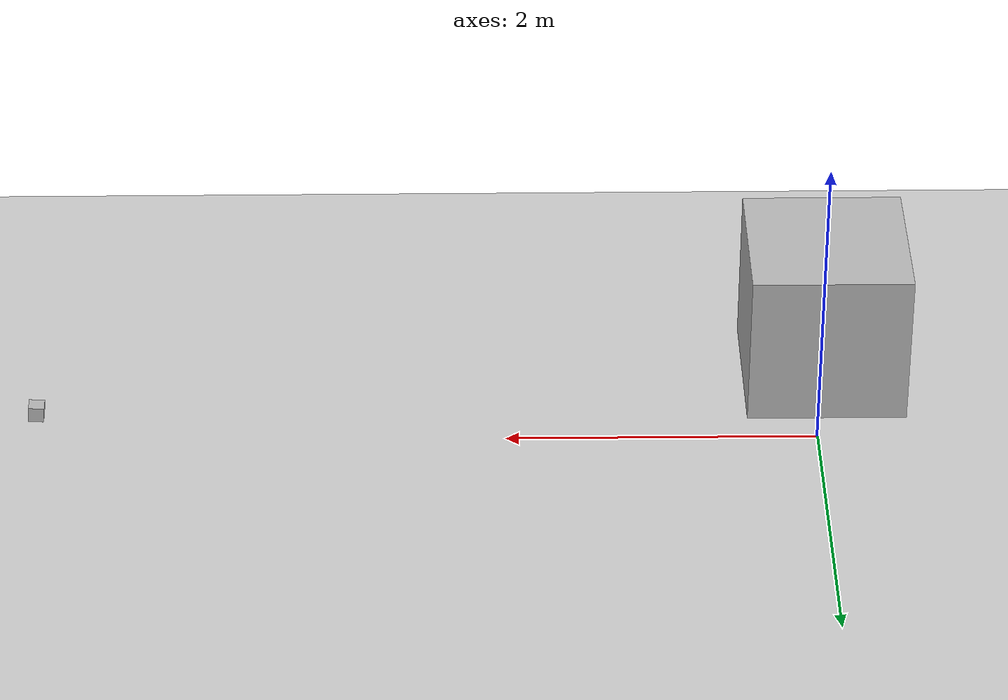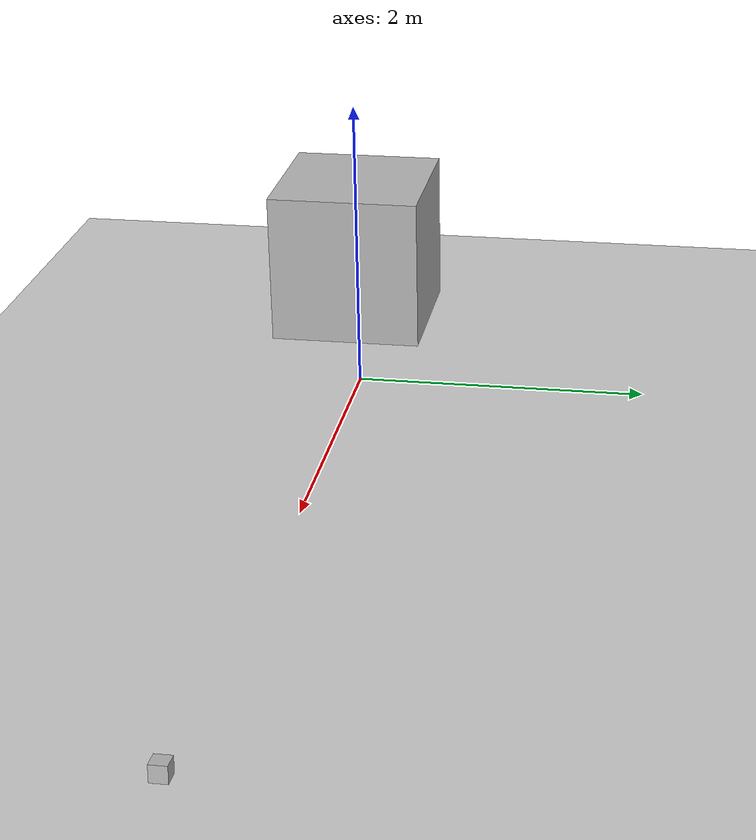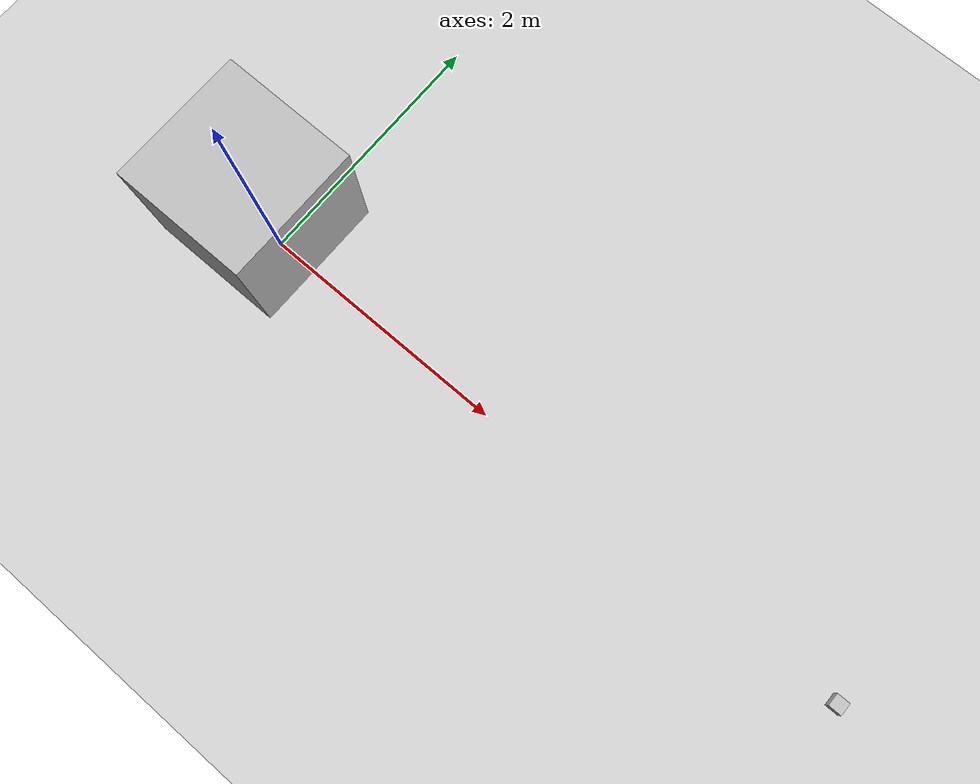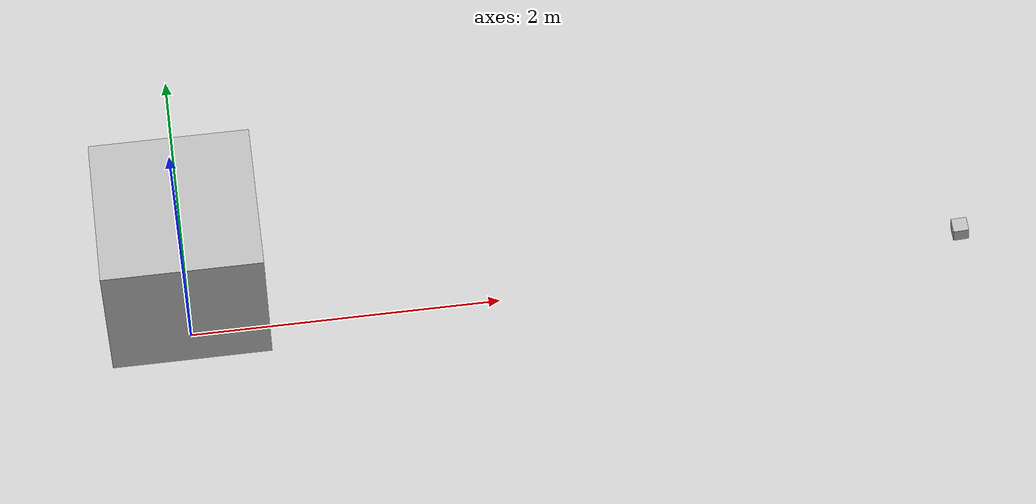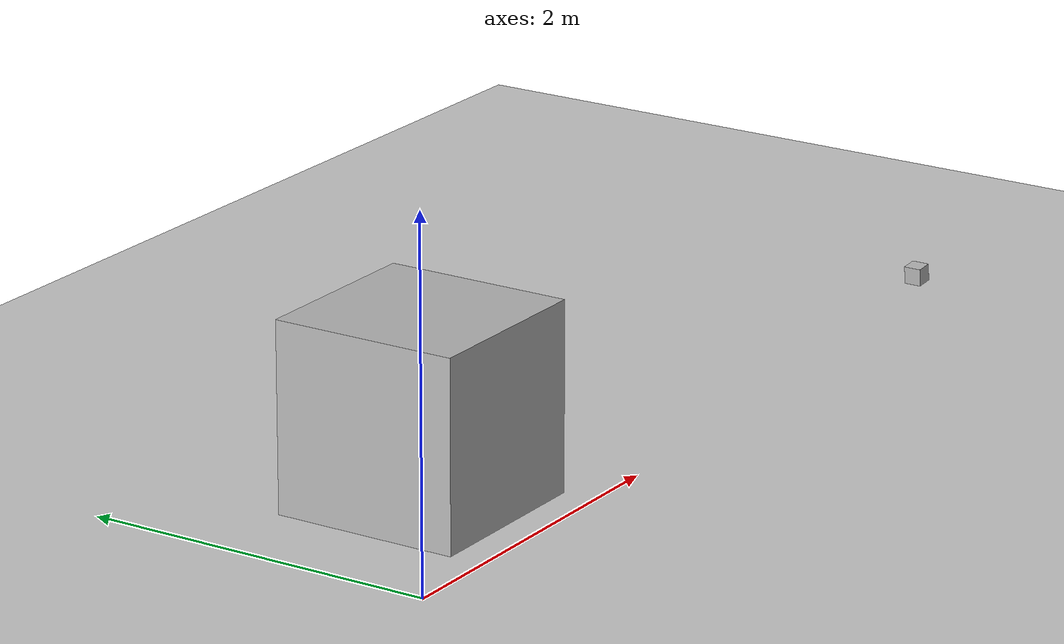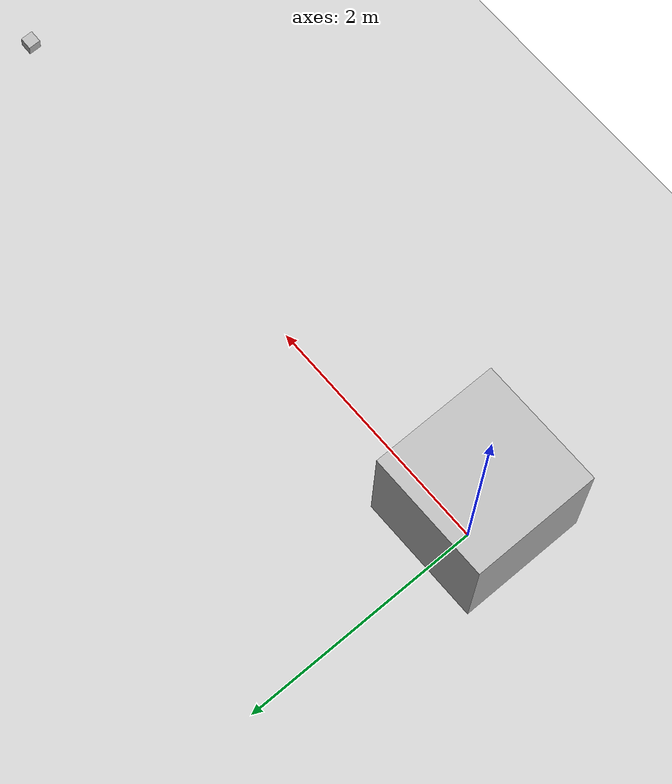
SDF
<?xml version="1.0" ?>
<sdf version="1.6">
  <world name="default">

    <light name='sun' type='directional'>
      <cast_shadows>1</cast_shadows>
      <pose>0 0 0 0 0 0</pose>
      <diffuse>1.0 1.0 1.0 1</diffuse>
      <specular>1.0 1.0 1.0 1</specular>
      <direction>1 0 -0.2</direction>
    </light>

    <include>
      <uri>model://ground_plane</uri>
    </include>

    <scene>
      <ignition:shadow_caster_material_name>Gazebo/shadow_caster_ignore_heightmap</ignition:shadow_caster_material_name>
      <background>0.0 0.0 0.0 1</background>
    </scene>

    <model name='camera_normal'>
      <static>1</static>
      <pose>5 0.0 0.25 0 1.5 0</pose>
      <link name='link'>
        <visual name='visual'>
          <geometry>
            <box>
              <size>0.1 0.1 0.1</size>
            </box>
          </geometry>
        </visual>
        <sensor name='camera_normal' type='camera'>
          <camera>
            <horizontal_fov>1.047</horizontal_fov>
            <image>
              <width>320</width>
              <height>240</height>
              <format>R8G8B8</format>
            </image>
            <clip>
              <near>0.1</near>
              <far>100</far>
            </clip>
          </camera>
          <always_on>1</always_on>
          <update_rate>10</update_rate>
        </sensor>
      </link>
    </model>

    <model name="box">
      <static>true</static>
      <pose>0 0 1.0 0 0 0</pose>
      <link name="link">
        <collision name="collision">
          <geometry>
            <box>
              <size>1 1 1</size>
            </box>
          </geometry>
        </collision>
        <visual name="visual">
          <geometry>
            <box>
              <size>1 1 1</size>
            </box>
          </geometry>
        </visual>
      </link>
    </model>

  </world>
</sdf>
